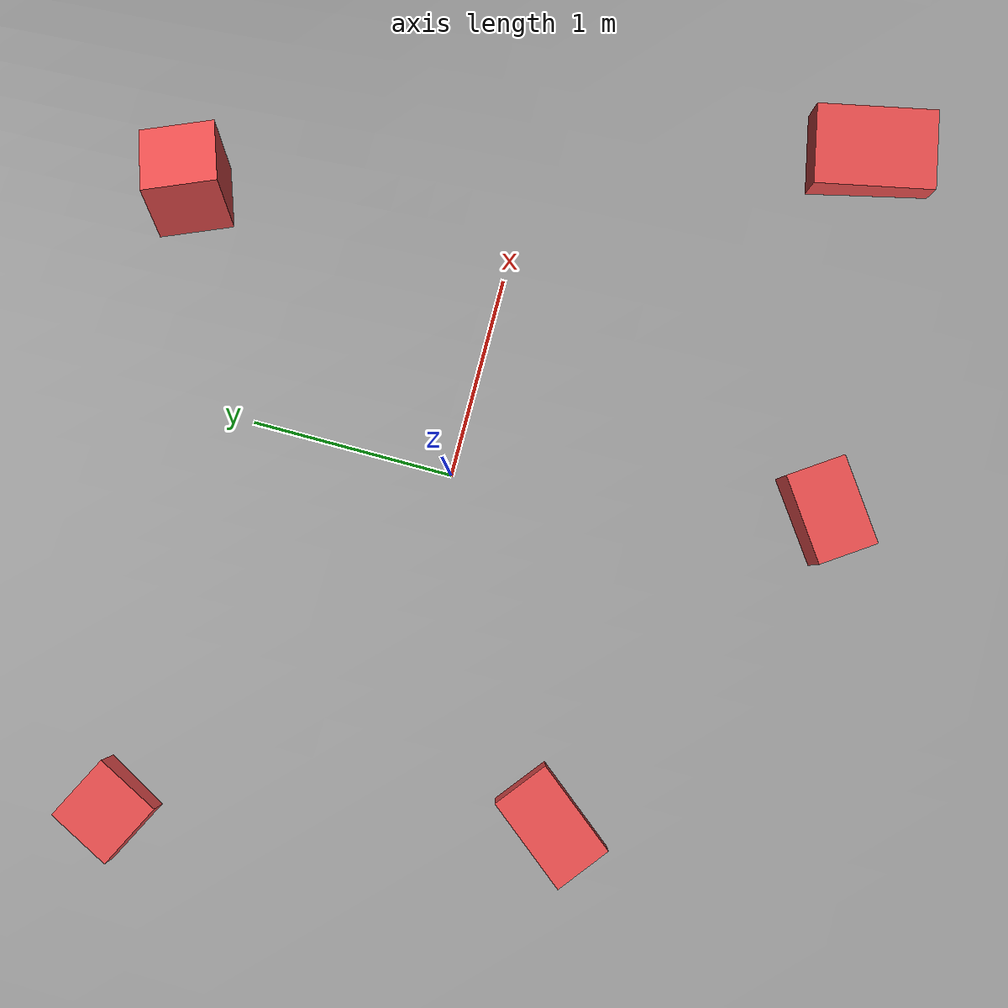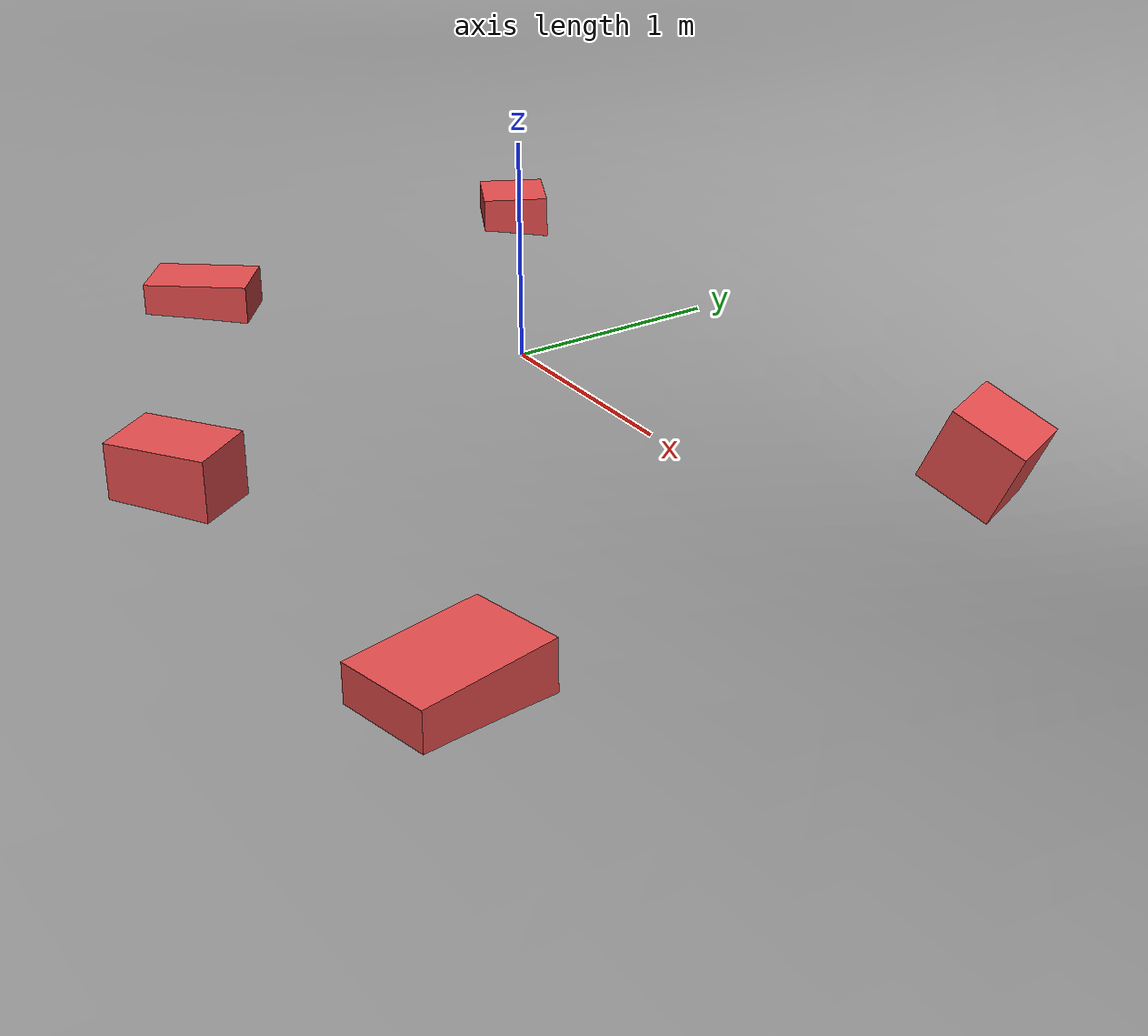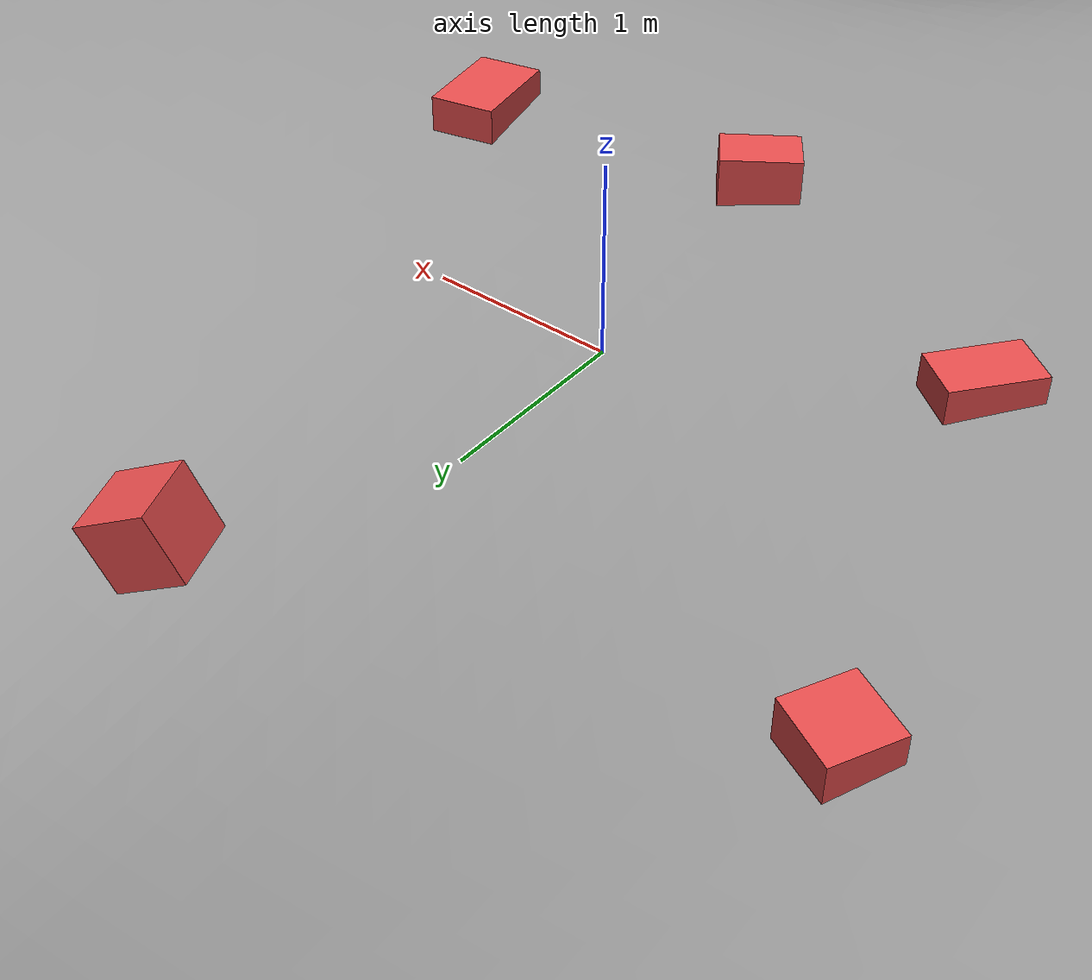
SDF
<?xml version="1.0" ?>
<sdf version="1.8">
  <world name="arena">

    <!-- Plugins -->
    <plugin filename="ignition-gazebo-physics-system"
            name="ignition::gazebo::systems::Physics"/>
    <plugin filename="ignition-gazebo-user-commands-system"
            name="ignition::gazebo::systems::UserCommands"/>
    <plugin filename="ignition-gazebo-scene-broadcaster-system"
            name="ignition::gazebo::systems::SceneBroadcaster"/>
    <plugin filename="ignition-gazebo-sensors-system"
            name="ignition::gazebo::systems::Sensors">
      <render_engine>ogre2</render_engine>
    </plugin>

    <!-- Lighting -->
    <light type="directional" name="sun">
      <cast_shadows>true</cast_shadows>
      <pose>0 0 10 0 0 0</pose>
      <diffuse>0.8 0.8 0.8 1</diffuse>
      <specular>0.2 0.2 0.2 1</specular>
      <direction>-0.5 0.1 -0.9</direction>
    </light>

    <!-- Ground plane -->

    <!-- Terrain Model-->
    <!-- Dae-based terrain-->
    <model name="terrain">
      <static>true</static>
      <pose>0 0 0 0 0 0</pose>
      <link name="link">
        <visual name="visual">
          <geometry>
            <mesh>
              <uri>landscape.dae</uri>
            </mesh>
          </geometry>
          <material>
            <ambient>0.4 0.4 0.4 1</ambient>
            <diffuse>0.6 0.6 0.6 1</diffuse>
            <specular>0 0 0 1</specular>
            <emissive>0 0 0 1</emissive>
            <double_sided>1</double_sided>
          </material>
        </visual>
      </link>
    </model>

    <model name="terrain_collision"> <!--Dont ask-->
      <static>true</static>
      <pose>0 0 -1.84 0 0 0</pose>
      <link name="link">
        <collision name="collision">
        <geometry>
          <heightmap>
            <uri>heightmap.png</uri>
            <size>20.0000 20.0000 1.8272</size>
            <pos>0 0 -2.249</pos>
          </heightmap>
        </geometry>
        <surface>
            <friction>
              <ode>
                <mu1>0.8</mu1>
                <mu2>0.8</mu2>
              </ode>
            </friction>
            <contact>
              <ode>
                <kp>1e6</kp>
                <kd>1.0</kd>
              </ode>
            </contact>
          </surface>
      </collision>
      </link>
    </model>

    <!-- Boundary walls  (arena: 6.88 m x 5.0 m, centered at origin)        -->
    <!-- Wall thickness: 0.1 m, height: 0.5 m                               -->

    <!-- Obstacles (static boxes, spread around the interior)               -->

    <model name="obstacle_1">
      <static>true</static>
      <pose>1.2 1.8 -0.5 0 0.4 0.4</pose>
      <link name="link">
        <collision name="collision">
          <geometry><box><size>0.4 0.4 0.4</size></box></geometry>
        </collision>
        <visual name="visual">
          <geometry><box><size>0.4 0.4 0.4</size></box></geometry>
          <material>
            <ambient>0.8 0.2 0.2 1</ambient>
            <diffuse>0.9 0.3 0.3 1</diffuse>
          </material>
        </visual>
      </link>
    </model>

    <model name="obstacle_2">
      <static>true</static>
      <pose>-1.5 -0.9 -0.15 0 0 0.9</pose>
      <link name="link">
        <collision name="collision">
          <geometry><box><size>0.5 0.3 0.5</size></box></geometry>
        </collision>
        <visual name="visual">
          <geometry><box><size>0.5 0.3 0.5</size></box></geometry>
          <material>
            <ambient>0.8 0.2 0.2 1</ambient>
            <diffuse>0.9 0.3 0.3 1</diffuse>
          </material>
        </visual>
      </link>
    </model>

    <model name="obstacle_3">
      <static>true</static>
      <pose>2.1 -1.6 -0.1 0 0 0.2</pose>
      <link name="link">
        <collision name="collision">
          <geometry><box><size>0.4 0.6 0.4</size></box></geometry>
        </collision>
        <visual name="visual">
          <geometry><box><size>0.4 0.6 0.4</size></box></geometry>
          <material>
            <ambient>0.8 0.2 0.2 1</ambient>
            <diffuse>0.9 0.3 0.3 1</diffuse>
          </material>
        </visual>
      </link>
    </model>

    <model name="obstacle_4">
      <static>true</static>
      <pose>-2.0 1.2 -0.2 0 0 1.1</pose>
      <link name="link">
        <collision name="collision">
          <geometry><box><size>0.35 0.35 0.4</size></box></geometry>
        </collision>
        <visual name="visual">
          <geometry><box><size>0.35 0.35 0.4</size></box></geometry>
          <material>
            <ambient>0.8 0.2 0.2 1</ambient>
            <diffuse>0.9 0.3 0.3 1</diffuse>
          </material>
        </visual>
      </link>
    </model>

    <model name="obstacle_5">
      <static>true</static>
      <pose>0.3 -1.8 0 0 0 0.6</pose>
      <link name="link">
        <collision name="collision">
          <geometry><box><size>0.45 0.3 0.4</size></box></geometry>
        </collision>
        <visual name="visual">
          <geometry><box><size>0.45 0.3 0.4</size></box></geometry>
          <material>
            <ambient>0.8 0.2 0.2 1</ambient>
            <diffuse>0.9 0.3 0.3 1</diffuse>
          </material>
        </visual>
      </link>
    </model>

  </world>
</sdf>
